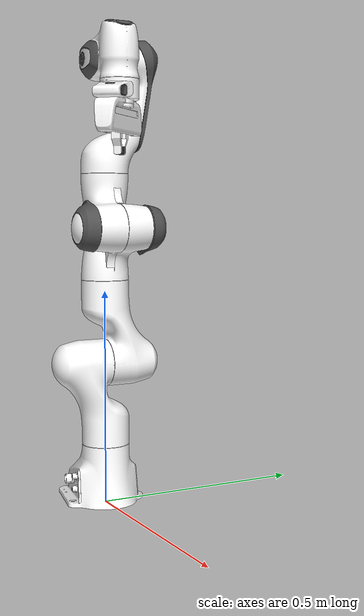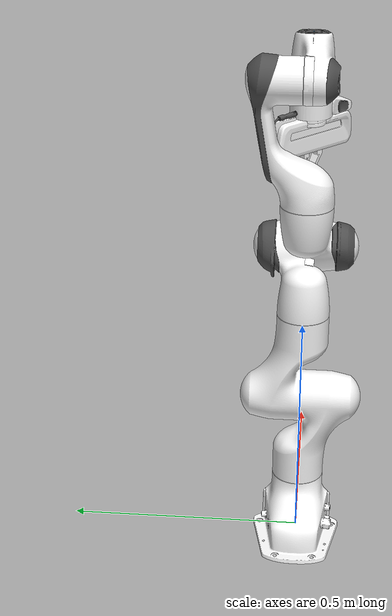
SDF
<sdf version='1.12'>
  <model name='panda'>
    <joint name="fix_to_world" type="fixed">
      <parent>world</parent>
      <child>panda</child>
    </joint>
    <link name='panda'>
      <inertial>
        <pose>-0.041018001735210419 -0.00014000000373926011 0.049973998218774802 0 0 0</pose>
        <mass>0.62976902723312378</mass>
        <inertia>
          <ixx>0.0031499998923813278</ixx>
          <ixy>8.2897145737138682e-07</ixy>
          <ixz>0.00014999999438674289</ixz>
          <iyy>0.0038799999968735272</iyy>
          <iyz>8.2299114240520787e-06</iyz>
          <izz>0.0042850001213994744</izz>
        </inertia>
      </inertial>
      <collision name='panda_fixed_joint_lump__Geom_11_collision'>
        <pose>-0.02918976545333862 -0.00087946496205404401 0.056603193283081048 0.073410503566265134 -1.1999953985214227 3.0813767910003662</pose>
        <geometry>
          <mesh>
            <scale>1 1 1</scale>
            <uri>./panda/meshes/stl/link0_c.stl</uri>
          </mesh>
        </geometry>
      </collision>
      <visual name='panda_fixed_joint_lump__Geom_0_visual'>
        <pose>-0.02434170804917812 0.068985842168331146 0.037001296877861023 0.88097333908081055 -0.00090121978428207774 1.731059789657593</pose>
        <geometry>
          <mesh>
            <scale>1 1 1</scale>
            <uri>./panda/meshes/stl/link0_0.stl</uri>
          </mesh>
        </geometry>
        <material>
          <diffuse>1 1 1 1</diffuse>
          <ambient>1 1 1 1</ambient>
        </material>
      </visual>
      <visual name='panda_fixed_joint_lump__Geom_1_visual_1'>
        <pose>-0.025005137547850609 0.072889678180217743 0.036978751420974731 2.3542244434356689 -0.066276095807552476 1.6549332141876218</pose>
        <geometry>
          <mesh>
            <scale>1 1 1</scale>
            <uri>./panda/meshes/stl/link0_1.stl</uri>
          </mesh>
        </geometry>
        <material>
          <diffuse>0.3125 0.3125 0.3125 1</diffuse>
          <ambient>0.3125 0.3125 0.3125 1</ambient>
        </material>
      </visual>
      <visual name='panda_fixed_joint_lump__Geom_2_visual_2'>
        <pose>-0.02374683320522308 -0.065352961421012878 0.062999323010444641 1.5704005956649782 -0.0057430132292210822 -0.16589890420436862</pose>
        <geometry>
          <mesh>
            <scale>1 1 1</scale>
            <uri>./panda/meshes/stl/link0_2.stl</uri>
          </mesh>
        </geometry>
        <material>
          <diffuse>1 1 1 1</diffuse>
          <ambient>1 1 1 1</ambient>
        </material>
      </visual>
      <visual name='panda_fixed_joint_lump__Geom_3_visual_3'>
        <pose>-0.024884207174181942 -0.072681337594985962 0.062931284308433533 0.86253124475479115 0.085192404687404716 1.286632180213928</pose>
        <geometry>
          <mesh>
            <scale>1 1 1</scale>
            <uri>./panda/meshes/stl/link0_3.stl</uri>
          </mesh>
        </geometry>
        <material>
          <diffuse>0.3125 0.3125 0.3125 1</diffuse>
          <ambient>0.3125 0.3125 0.3125 1</ambient>
        </material>
      </visual>
      <visual name='panda_fixed_joint_lump__Geom_4_visual_4'>
        <pose>-0.06482117623090744 -0.065604247152805328 0.048001378774642937 0.030375862494111058 0.012032273225486277 1.4114311933517463</pose>
        <geometry>
          <mesh>
            <scale>1 1 1</scale>
            <uri>./panda/meshes/stl/link0_4.stl</uri>
          </mesh>
        </geometry>
        <material>
          <diffuse>1 1 1 1</diffuse>
          <ambient>1 1 1 1</ambient>
        </material>
      </visual>
      <visual name='panda_fixed_joint_lump__Geom_5_visual_5'>
        <pose>-0.059638854116201401 0.057885069400072098 0.036908484995365143 1.7514346837997441 -1.1657341758564144e-15 1.731783270835876</pose>
        <geometry>
          <mesh>
            <scale>1 1 1</scale>
            <uri>./panda/meshes/stl/link0_5.stl</uri>
          </mesh>
        </geometry>
        <material>
          <diffuse>0.3125 0.3125 0.3125 1</diffuse>
          <ambient>0.3125 0.3125 0.3125 1</ambient>
        </material>
      </visual>
      <visual name='panda_fixed_joint_lump__Geom_6_visual_6'>
        <pose>0.0110528040677309 -0.072000034153461456 0.04606270045042038 -0.12475356459617619 0.002619338454678613 1.41191554069519</pose>
        <geometry>
          <mesh>
            <scale>1 1 1</scale>
            <uri>./panda/meshes/stl/link0_7.stl</uri>
          </mesh>
        </geometry>
        <material>
          <diffuse>1 1 1 1</diffuse>
          <ambient>1 1 1 1</ambient>
        </material>
      </visual>
      <visual name='panda_fixed_joint_lump__Geom_7_visual_7'>
        <pose>-0.029952924698591229 -3.4480170143069699e-05 0.053494546562433243 -0.0013455851003527633 -1.135651707649231 -3.1380126476287842</pose>
        <geometry>
          <mesh>
            <scale>1 1 1</scale>
            <uri>./panda/meshes/stl/link0_8.stl</uri>
          </mesh>
        </geometry>
        <material>
          <diffuse>1 1 1 1</diffuse>
          <ambient>1 1 1 1</ambient>
        </material>
      </visual>
      <visual name='panda_fixed_joint_lump__Geom_8_visual_8'>
        <pose>-0.02499927394092083 -0.073032073676586151 0.0328950434923172 1.8630088567733756 -1.5551604032516493 -0.43340367078781517</pose>
        <geometry>
          <mesh>
            <scale>1 1 1</scale>
            <uri>./panda/meshes/stl/link0_9.stl</uri>
          </mesh>
        </geometry>
        <material>
          <diffuse>0.3125 0.3125 0.3125 1</diffuse>
          <ambient>0.3125 0.3125 0.3125 1</ambient>
        </material>
      </visual>
      <visual name='panda_fixed_joint_lump__Geom_9_visual_9'>
        <pose>-0.02378720045089722 -0.065486304461956024 0.032974105328321457 1.5455597639083858 -0.011791349388659007 -0.15464279055595401</pose>
        <geometry>
          <mesh>
            <scale>1 1 1</scale>
            <uri>./panda/meshes/stl/link0_10.stl</uri>
          </mesh>
        </geometry>
        <material>
          <diffuse>1 1 1 1</diffuse>
          <ambient>1 1 1 1</ambient>
        </material>
      </visual>
      <visual name='panda_fixed_joint_lump__Geom_10_visual_10'>
        <pose>0.01104283332824707 0.071996957063674927 0.046087440103292472 -0.12477058172225948 -0.0025225700810551726 1.7314902544021611</pose>
        <geometry>
          <mesh>
            <scale>1 1 1</scale>
            <uri>./panda/meshes/stl/link0_11.stl</uri>
          </mesh>
        </geometry>
        <material>
          <diffuse>1 1 1 1</diffuse>
          <ambient>1 1 1 1</ambient>
        </material>
      </visual>
    </link>
    <joint name='joint1' type='revolute'>
      <pose relative_to='panda'>0 0 0.33300000429153442 0 0 0</pose>
      <parent>panda</parent>
      <child>link1</child>
      <axis>
        <xyz>0 0 1</xyz>
        <limit>
          <lower>-2.897300004959106</lower>
          <upper>2.897300004959106</upper>
          <effort>1000</effort>
          <velocity>1000</velocity>
        </limit>
        <dynamics>
          <spring_reference>0</spring_reference>
          <spring_stiffness>0</spring_stiffness>
        </dynamics>
      </axis>
    </joint>
    <link name='link1'>
      <pose relative_to='joint1'>0 0 0 0 0 0</pose>
      <inertial>
        <pose>0.0038749999366700649 0.0020810000132769351 -0.047619998455047607 -0.009398424997925767 -0.027576528489589695 1.5581063032150273</pose>
        <mass>4.9706840515136719</mass>
        <inertia>
          <ixx>0.70713698863983154</ixx>
          <ixy>0</ixy>
          <ixz>0</ixz>
          <iyy>0.70343542098999023</iyy>
          <iyz>0</iyz>
          <izz>0.0085245566442608833</izz>
        </inertia>
      </inertial>
      <collision name='link1_fixed_joint_lump__Geom_13_collision'>
        <pose>1.1398981769161759e-05 -0.031265527009963989 -0.06937330961227417 0.35075756907463085 -0.0003218273341190071 0.0006491282838396727</pose>
        <geometry>
          <mesh>
            <scale>1 1 1</scale>
            <uri>./panda/meshes/stl/link1_c.stl</uri>
          </mesh>
        </geometry>
      </collision>
      <visual name='link1_fixed_joint_lump__Geom_12_visual'>
        <pose>2.2415551939047869e-06 -0.032479386776685708 -0.067575864493846893 0.38337042927741999 0.00014062898117117595 -0.00037883082404732704</pose>
        <geometry>
          <mesh>
            <scale>1 1 1</scale>
            <uri>./panda/meshes/stl/link1.stl</uri>
          </mesh>
        </geometry>
        <material>
          <diffuse>1 1 1 1</diffuse>
          <ambient>1 1 1 1</ambient>
        </material>
      </visual>
    </link>
    <joint name='joint2' type='revolute'>
      <pose relative_to='link1'>0 0 0 -1.5707963705062871 0 0</pose>
      <parent>link1</parent>
      <child>link2</child>
      <axis>
        <xyz>0 0 1</xyz>
        <limit>
          <lower>-1.762799978256226</lower>
          <upper>1.762799978256226</upper>
          <effort>1000</effort>
          <velocity>1000</velocity>
        </limit>
        <dynamics>
          <spring_reference>0</spring_reference>
          <spring_stiffness>0</spring_stiffness>
        </dynamics>
      </axis>
    </joint>
    <link name='link2'>
      <pose relative_to='joint2'>0 0 0 0 0 0</pose>
      <inertial>
        <pose>-0.003140999935567379 -0.028720000758767131 0.0034950000699609518 -2.3514454364776611 -0.96178817749023482 -0.72298550605773948</pose>
        <mass>0.64692598581314087</mass>
        <inertia>
          <ixx>0.031032642349600788</ixx>
          <ixy>0</ixy>
          <ixz>0</ixz>
          <iyy>0.028300106525421139</iyy>
          <iyz>0</iyz>
          <izz>0.002734250389039516</izz>
        </inertia>
      </inertial>
      <collision name='link2_fixed_joint_lump__Geom_15_collision'>
        <pose>-1.317655369348358e-05 -0.070321552455425262 0.031178239732980732 1.916776657104492 3.8633865187875893e-05 -0.0001752009702613577</pose>
        <geometry>
          <mesh>
            <scale>1 1 1</scale>
            <uri>./panda/meshes/stl/link2_c.stl</uri>
          </mesh>
        </geometry>
      </collision>
      <visual name='link2_fixed_joint_lump__Geom_14_visual'>
        <pose>3.082552893829416e-06 -0.068602755665779114 0.032209731638431549 1.9510754346847528 -0.00039106394979171487 -0.00013279869745019815</pose>
        <geometry>
          <mesh>
            <scale>1 1 1</scale>
            <uri>./panda/meshes/stl/link2.stl</uri>
          </mesh>
        </geometry>
        <material>
          <diffuse>1 1 1 1</diffuse>
          <ambient>1 1 1 1</ambient>
        </material>
      </visual>
    </link>
    <joint name='joint3' type='revolute'>
      <pose relative_to='link2'>0 -0.31600001454353333 2.4651903288156619e-32 1.5707963705062871 0 0</pose>
      <parent>link2</parent>
      <child>link3</child>
      <axis>
        <xyz>0 0 1</xyz>
        <limit>
          <lower>-2.897300004959106</lower>
          <upper>2.897300004959106</upper>
          <effort>1000</effort>
          <velocity>1000</velocity>
        </limit>
        <dynamics>
          <spring_reference>0</spring_reference>
          <spring_stiffness>0</spring_stiffness>
        </dynamics>
      </axis>
    </joint>
    <link name='link3'>
      <pose relative_to='joint3'>0 0 0 0 0 0</pose>
      <inertial>
        <pose>0.027518000453710559 0.039252001792192459 -0.066501997411251068 0.37785014510154724 0.35082399845123308 1.7004150152206423</pose>
        <mass>3.2286040782928471</mass>
        <inertia>
          <ixx>0.04150138795375824</ixx>
          <ixy>0</ixy>
          <ixz>0</ixz>
          <iyy>0.041479256004095078</iyy>
          <iyz>0</iyz>
          <izz>0.0012463544262573121</izz>
        </inertia>
      </inertial>
      <collision name='link3_fixed_joint_lump__Geom_20_collision'>
        <pose>0.044348306953907013 0.024928325787186619 -0.038129985332489007 0.62642812728881847 -0.64891242980957053 2.788815021514893</pose>
        <geometry>
          <mesh>
            <scale>1 1 1</scale>
            <uri>./panda/meshes/stl/link3_c.stl</uri>
          </mesh>
        </geometry>
      </collision>
      <visual name='link3_fixed_joint_lump__Geom_16_visual'>
        <pose>0.041640069335699081 0.024441450834274289 -0.037274930626153953 0.57065826654434204 -0.72423368692398138 2.9041154384613042</pose>
        <geometry>
          <mesh>
            <scale>1 1 1</scale>
            <uri>./panda/meshes/stl/link3_0.stl</uri>
          </mesh>
        </geometry>
        <material>
          <diffuse>1 1 1 1</diffuse>
          <ambient>1 1 1 1</ambient>
        </material>
      </visual>
      <visual name='link3_fixed_joint_lump__Geom_17_visual_1'>
        <pose>0.021553479135036469 -0.01122317090630531 -0.01154831890016794 -3.1202132701873779 -1.0597566366195679 -1.4907529354095459</pose>
        <geometry>
          <mesh>
            <scale>1 1 1</scale>
            <uri>./panda/meshes/stl/link3_1.stl</uri>
          </mesh>
        </geometry>
        <material>
          <diffuse>1 1 1 1</diffuse>
          <ambient>1 1 1 1</ambient>
        </material>
      </visual>
      <visual name='link3_fixed_joint_lump__Geom_18_visual_2'>
        <pose>0.056876711547374732 -0.01139492075890303 -0.061174463480710983 0.0014353713486343616 -0.0078644454479217495 2.3501865863800049</pose>
        <geometry>
          <mesh>
            <scale>1 1 1</scale>
            <uri>./panda/meshes/stl/link3_2.stl</uri>
          </mesh>
        </geometry>
        <material>
          <diffuse>1 1 1 1</diffuse>
          <ambient>1 1 1 1</ambient>
        </material>
      </visual>
      <visual name='link3_fixed_joint_lump__Geom_19_visual_3'>
        <pose>0.077491171658039093 0.079633466899394989 -0.0040228888392448434 0.91038072109222423 0.053157500922679714 1.636165976524353</pose>
        <geometry>
          <mesh>
            <scale>1 1 1</scale>
            <uri>./panda/meshes/stl/link3_3.stl</uri>
          </mesh>
        </geometry>
        <material>
          <diffuse>0.3125 0.3125 0.3125 1</diffuse>
          <ambient>0.3125 0.3125 0.3125 1</ambient>
        </material>
      </visual>
    </link>
    <joint name='joint4' type='revolute'>
      <pose relative_to='link3'>0.082500003278255463 -1.2325951644078309e-32 1.110223024625157e-16 1.5707963705062871 0 0</pose>
      <parent>link3</parent>
      <child>link4</child>
      <axis>
        <xyz>0 0 1</xyz>
        <limit>
          <lower>-3.0717999935150151</lower>
          <upper>-0.069799996912479401</upper>
          <effort>1000</effort>
          <velocity>1000</velocity>
        </limit>
        <dynamics>
          <spring_reference>0</spring_reference>
          <spring_stiffness>0</spring_stiffness>
        </dynamics>
      </axis>
    </joint>
    <link name='link4'>
      <pose relative_to='joint4'>0 0 0 0 0 0</pose>
      <inertial>
        <pose>-0.053169999271631241 0.1044190004467964 0.02745399996638298 0.94913733005523671 -0.76513409614562977 0.96968561410903942</pose>
        <mass>3.5878949165344238</mass>
        <inertia>
          <ixx>0.034959640353918083</ixx>
          <ixy>0</ixy>
          <ixz>0</ixz>
          <iyy>0.02814827673137188</iyy>
          <iyz>0</iyz>
          <izz>0.01062008365988731</izz>
        </inertia>
      </inertial>
      <collision name='link4_fixed_joint_lump__Geom_25_collision'>
        <pose>-0.038550294935703278 0.039525609463453293 0.024716241285204891 1.157525300979614 0.36233735084533691 0.6286469101905825</pose>
        <geometry>
          <mesh>
            <scale>1 1 1</scale>
            <uri>./panda/meshes/stl/link4_c.stl</uri>
          </mesh>
        </geometry>
      </collision>
      <visual name='link4_fixed_joint_lump__Geom_21_visual'>
        <pose>-0.025622488930821419 0.061185218393802643 -0.01139383111149073 -1.5781503915786741 -0.79126405715942449 -3.1295969486236568</pose>
        <geometry>
          <mesh>
            <scale>1 1 1</scale>
            <uri>./panda/meshes/stl/link4_0.stl</uri>
          </mesh>
        </geometry>
        <material>
          <diffuse>1 1 1 1</diffuse>
          <ambient>1 1 1 1</ambient>
        </material>
      </visual>
      <visual name='link4_fixed_joint_lump__Geom_22_visual_1'>
        <pose>-0.041551943868398673 0.038693804293870933 0.024040184915065769 1.1469171047210689 0.32720360159873962 0.65765702724456787</pose>
        <geometry>
          <mesh>
            <scale>1 1 1</scale>
            <uri>./panda/meshes/stl/link4_1.stl</uri>
          </mesh>
        </geometry>
        <material>
          <diffuse>1 1 1 1</diffuse>
          <ambient>1 1 1 1</ambient>
        </material>
      </visual>
      <visual name='link4_fixed_joint_lump__Geom_23_visual_2'>
        <pose>-0.0050090090371668339 0.004010283388197422 0.079634472727775574 0.017287049442529945 -1.4866933822631876 2.4623763561248775</pose>
        <geometry>
          <mesh>
            <scale>1 1 1</scale>
            <uri>./panda/meshes/stl/link4_2.stl</uri>
          </mesh>
        </geometry>
        <material>
          <diffuse>0.3125 0.3125 0.3125 1</diffuse>
          <ambient>0.3125 0.3125 0.3125 1</ambient>
        </material>
      </visual>
      <visual name='link4_fixed_joint_lump__Geom_24_visual_3'>
        <pose>-0.060935694724321372 0.01154452096670866 -0.011228485032916071 -0.11249836534261695 -0.50914639234542847 1.6149866580963128</pose>
        <geometry>
          <mesh>
            <scale>1 1 1</scale>
            <uri>./panda/meshes/stl/link4_3.stl</uri>
          </mesh>
        </geometry>
        <material>
          <diffuse>1 1 1 1</diffuse>
          <ambient>1 1 1 1</ambient>
        </material>
      </visual>
    </link>
    <joint name='joint5' type='revolute'>
      <pose relative_to='link4'>-0.082500003278255463 0.38400000333786011 0 -1.5707963705062871 0 0</pose>
      <parent>link4</parent>
      <child>link5</child>
      <axis>
        <xyz>0 0 1</xyz>
        <limit>
          <lower>-2.897300004959106</lower>
          <upper>2.897300004959106</upper>
          <effort>1000</effort>
          <velocity>1000</velocity>
        </limit>
        <dynamics>
          <spring_reference>0</spring_reference>
          <spring_stiffness>0</spring_stiffness>
        </dynamics>
      </axis>
    </joint>
    <link name='link5'>
      <pose relative_to='joint5'>0 0 0 0 0 0</pose>
      <inertial>
        <pose>-0.01195299997925758 0.041064999997615807 -0.038437001407146447 -0.044814899563789395 0.13901987671852112 -0.28689983487129206</pose>
        <mass>1.2259459495544429</mass>
        <inertia>
          <ixx>0.0367625392973423</ixx>
          <ixy>0</ixy>
          <ixz>0</ixz>
          <iyy>0.028853090479969978</iyy>
          <iyz>0</iyz>
          <izz>0.0080343708395957947</izz>
        </inertia>
      </inertial>
      <collision name='link5_fixed_joint_lump__Geom_29_collision'>
        <pose>0.00097325880778953433 0.019922221079468731 -0.20910695195198059 -2.9667460918426509 -0.90616524219512962 -1.8724935054779053</pose>
        <geometry>
          <mesh>
            <scale>1 1 1</scale>
            <uri>./panda/meshes/stl/link5_c0.stl</uri>
          </mesh>
        </geometry>
      </collision>
      <collision name='link5_fixed_joint_lump__Geom_30_collision_1'>
        <pose>-0.00023507016885560011 0.080059252679347992 -0.12115345150232321 0.0037856136914342637 0.24683557450771332 1.5664136409759519</pose>
        <geometry>
          <mesh>
            <scale>1 1 1</scale>
            <uri>./panda/meshes/stl/link5_c1.stl</uri>
          </mesh>
        </geometry>
      </collision>
      <collision name='link5_fixed_joint_lump__Geom_31_collision_2'>
        <pose>0.0001502534287283197 0.069182969629764557 -0.0045388308353722104 1.1780917644500728 -0.0051827174611389637 0.0052076573483645925</pose>
        <geometry>
          <mesh>
            <scale>1 1 1</scale>
            <uri>./panda/meshes/stl/link5_c2.stl</uri>
          </mesh>
        </geometry>
      </collision>
      <visual name='link5_fixed_joint_lump__Geom_26_visual'>
        <pose>-0.0001290949294343591 0.095753885805606842 -0.032729625701904297 0.0021646835375577159 0.04994665086269378 1.5671027898788448</pose>
        <geometry>
          <mesh>
            <scale>1 1 1</scale>
            <uri>./panda/meshes/stl/link5_0.stl</uri>
          </mesh>
        </geometry>
        <material>
          <diffuse>0.3125 0.3125 0.3125 1</diffuse>
          <ambient>0.3125 0.3125 0.3125 1</ambient>
        </material>
      </visual>
      <visual name='link5_fixed_joint_lump__Geom_27_visual_1'>
        <pose>-0.010146972723305231 0.10322721302509311 -0.11142128705978389 0.12574712932109833 0.17403830587863933 1.692032933235168</pose>
        <geometry>
          <mesh>
            <scale>1 1 1</scale>
            <uri>./panda/meshes/stl/link5_1.stl</uri>
          </mesh>
        </geometry>
        <material>
          <diffuse>1 1 1 1</diffuse>
          <ambient>1 1 1 1</ambient>
        </material>
      </visual>
      <visual name='link5_fixed_joint_lump__Geom_28_visual_2'>
        <pose>-1.4686699500998659e-07 0.044252697378396988 -0.1112985387444496 -0.27700033783912659 2.4900251446524642e-05 6.5546038968022886e-05</pose>
        <geometry>
          <mesh>
            <scale>1 1 1</scale>
            <uri>./panda/meshes/stl/link5_2.stl</uri>
          </mesh>
        </geometry>
        <material>
          <diffuse>1 1 1 1</diffuse>
          <ambient>1 1 1 1</ambient>
        </material>
      </visual>
    </link>
    <joint name='joint6' type='revolute'>
      <pose relative_to='link5'>0 -3.081487911019577e-33 0 1.5707963705062871 0 0</pose>
      <parent>link5</parent>
      <child>link6</child>
      <axis>
        <xyz>0 0 1</xyz>
        <limit>
          <lower>-0.017500000074505809</lower>
          <upper>3.752500057220459</upper>
          <effort>1000</effort>
          <velocity>1000</velocity>
        </limit>
        <dynamics>
          <spring_reference>0</spring_reference>
          <spring_stiffness>0</spring_stiffness>
        </dynamics>
      </axis>
    </joint>
    <link name='link6'>
      <pose relative_to='joint6'>0 0 0 0 0 0</pose>
      <inertial>
        <pose>0.060148999094963067 -0.01411699969321489 -0.010517000220716 0.51302474737167314 -1.2262420654296884 2.524661540985107</pose>
        <mass>1.6665550470352171</mass>
        <inertia>
          <ixx>0.0058427611365914336</ixx>
          <ixy>0</ixy>
          <ixz>0</ixz>
          <iyy>0.0043103736825287342</iyy>
          <iyz>0</iyz>
          <izz>0.0015978650189936161</izz>
        </inertia>
      </inertial>
      <collision name='link6_fixed_joint_lump__Geom_49_collision'>
        <pose>0.051002293825149543 0.0069326730445027351 0.0061689931899309158 -3.061599969863892 -1.4277689456939708 0.048520706593990284</pose>
        <geometry>
          <mesh>
            <scale>1 1 1</scale>
            <uri>./panda/meshes/stl/link6_c.stl</uri>
          </mesh>
        </geometry>
      </collision>
      <visual name='link6_fixed_joint_lump__Geom_32_visual'>
        <pose>0.025386864319443699 -0.01551799941807985 -0.0051399674266576767 0.16938182711601221 -1.5174187421798704 2.4590718746185307</pose>
        <geometry>
          <mesh>
            <scale>1 1 1</scale>
            <uri>./panda/meshes/stl/link6_0.stl</uri>
          </mesh>
        </geometry>
        <material>
          <diffuse>1 1 1 1</diffuse>
          <ambient>1 1 1 1</ambient>
        </material>
      </visual>
      <visual name='link6_fixed_joint_lump__Geom_33_visual_1'>
        <pose>9.6891286375466734e-05 0.001489222166128457 0.052967306226491928 -1.7817827463150022 -1.4691929817199723 -3.1375558376312274</pose>
        <geometry>
          <mesh>
            <scale>1 1 1</scale>
            <uri>./panda/meshes/stl/link6_1.stl</uri>
          </mesh>
        </geometry>
        <material>
          <diffuse>1 1 1 1</diffuse>
          <ambient>1 1 1 1</ambient>
        </material>
      </visual>
      <visual name='link6_fixed_joint_lump__Geom_34_visual_2'>
        <pose>0.1033527925610542 0.068194136023521423 -0.00058207398978993297 1.4199872016906741 -0.0099118994548915811 1.3432543277740481</pose>
        <geometry>
          <mesh>
            <scale>1 1 1</scale>
            <uri>./panda/meshes/stl/link6_2.stl</uri>
          </mesh>
        </geometry>
        <material>
          <diffuse>0.3125 0.3125 0.3125 1</diffuse>
          <ambient>0.3125 0.3125 0.3125 1</ambient>
        </material>
      </visual>
      <visual name='link6_fixed_joint_lump__Geom_35_visual_3'>
        <pose>0.088205479085445404 0.077725529670715332 -0.010604832321405411 0 0 0</pose>
        <geometry>
          <mesh>
            <scale>1 1 1</scale>
            <uri>./panda/meshes/stl/link6_3.stl</uri>
          </mesh>
        </geometry>
        <material>
          <diffuse>1 1 1 1</diffuse>
          <ambient>1 1 1 1</ambient>
        </material>
      </visual>
      <visual name='link6_fixed_joint_lump__Geom_36_visual_4'>
        <pose>0.098668210208415985 0.075884878635406494 -3.8183816286618821e-06 1.5707963705062871 -1.1657341758564144e-15 1.5707963705062871</pose>
        <geometry>
          <mesh>
            <scale>1 1 1</scale>
            <uri>./panda/meshes/stl/link6_4.stl</uri>
          </mesh>
        </geometry>
        <material>
          <diffuse>1 1 1 1</diffuse>
          <ambient>1 1 1 1</ambient>
        </material>
      </visual>
      <visual name='link6_fixed_joint_lump__Geom_37_visual_5'>
        <pose>0.088203072547912598 0.077727921307086945 0.01061945594847202 0 0 0</pose>
        <geometry>
          <mesh>
            <scale>1 1 1</scale>
            <uri>./panda/meshes/stl/link6_5.stl</uri>
          </mesh>
        </geometry>
        <material>
          <diffuse>1 1 1 1</diffuse>
          <ambient>1 1 1 1</ambient>
        </material>
      </visual>
      <visual name='link6_fixed_joint_lump__Geom_38_visual_6'>
        <pose>0.077755987644195557 0.079569511115550995 -2.4452554043818959e-06 1.5707963705062871 -1.1657341758564144e-15 1.5707963705062871</pose>
        <geometry>
          <mesh>
            <scale>1 1 1</scale>
            <uri>./panda/meshes/stl/link6_6.stl</uri>
          </mesh>
        </geometry>
        <material>
          <diffuse>1 1 1 1</diffuse>
          <ambient>1 1 1 1</ambient>
        </material>
      </visual>
      <visual name='link6_fixed_joint_lump__Geom_39_visual_7'>
        <pose>0.063389331102371216 0.08160700649023056 -1.3937560083832071e-07 0 0 0</pose>
        <geometry>
          <mesh>
            <scale>1 1 1</scale>
            <uri>./panda/meshes/stl/link6_7.stl</uri>
          </mesh>
        </geometry>
        <material>
          <diffuse>0.0490199998 0.676470041 0.975489974 1</diffuse>
          <ambient>0.0490199998 0.676470041 0.975489974 1</ambient>
        </material>
      </visual>
      <visual name='link6_fixed_joint_lump__Geom_40_visual_8'>
        <pose>0.1144352480769157 0.070936717092990875 -1.2390758001856741e-06 0 0 0</pose>
        <geometry>
          <mesh>
            <scale>1 1 1</scale>
            <uri>./panda/meshes/stl/link6_8.stl</uri>
          </mesh>
        </geometry>
        <material>
          <diffuse>0.0490199998 0.676470041 0.975489974 1</diffuse>
          <ambient>0.0490199998 0.676470041 0.975489974 1</ambient>
        </material>
      </visual>
      <visual name='link6_fixed_joint_lump__Geom_41_visual_9'>
        <pose>-0.00072939199162647128 -0.0001012687789625488 0.052537377923727042 -0.012449674308300024 -1.468942165374759 -3.141592566167013</pose>
        <geometry>
          <mesh>
            <scale>1 1 1</scale>
            <uri>./panda/meshes/stl/link6_9.stl</uri>
          </mesh>
        </geometry>
        <material>
          <diffuse>0.3125 0.3125 0.3125 1</diffuse>
          <ambient>0.3125 0.3125 0.3125 1</ambient>
        </material>
      </visual>
      <visual name='link6_fixed_joint_lump__Geom_42_visual_10'>
        <pose>0.091525919735431671 0.075753055512905121 -6.295970524661243e-05 1.6008551120758059 -0.00059030129341403103 1.351572632789612</pose>
        <geometry>
          <mesh>
            <scale>1 1 1</scale>
            <uri>./panda/meshes/stl/link6_10.stl</uri>
          </mesh>
        </geometry>
        <material>
          <diffuse>0.3125 0.3125 0.3125 1</diffuse>
          <ambient>0.3125 0.3125 0.3125 1</ambient>
        </material>
      </visual>
      <visual name='link6_fixed_joint_lump__Geom_43_visual_11'>
        <pose>0.088052384555339813 0.076807066798210144 -1.222126047650818e-05 0 0 1.3960084915161131</pose>
        <geometry>
          <mesh>
            <scale>1 1 1</scale>
            <uri>./panda/meshes/stl/link6_11.stl</uri>
          </mesh>
        </geometry>
        <material>
          <diffuse>1 1 1 1</diffuse>
          <ambient>1 1 1 1</ambient>
        </material>
      </visual>
      <visual name='link6_fixed_joint_lump__Geom_44_visual_12'>
        <pose>0.088302627205848694 0.077489271759986877 -0.024865582585334781 0 0 0</pose>
        <geometry>
          <mesh>
            <scale>1 1 1</scale>
            <uri>./panda/meshes/stl/link6_12.stl</uri>
          </mesh>
        </geometry>
        <material>
          <diffuse>0 1 0 1</diffuse>
          <ambient>0 1 0 1</ambient>
        </material>
      </visual>
      <visual name='link6_fixed_joint_lump__Geom_45_visual_13'>
        <pose>0.088170304894447327 0.077455528080463409 0.025032425299286839 0 0 0</pose>
        <geometry>
          <mesh>
            <scale>1 1 1</scale>
            <uri>./panda/meshes/stl/link6_13.stl</uri>
          </mesh>
        </geometry>
        <material>
          <diffuse>1 1 1 1</diffuse>
          <ambient>1 1 1 1</ambient>
        </material>
      </visual>
      <visual name='link6_fixed_joint_lump__Geom_46_visual_14'>
        <pose>0.0074149947613477707 0.00012494443217292431 0.043721359223127372 0.02864136174321167 -1.4710581302642891 3.1242022514343262</pose>
        <geometry>
          <mesh>
            <scale>1 1 1</scale>
            <uri>./panda/meshes/stl/link6_14.stl</uri>
          </mesh>
        </geometry>
        <material>
          <diffuse>0.3125 0.3125 0.3125 1</diffuse>
          <ambient>0.3125 0.3125 0.3125 1</ambient>
        </material>
      </visual>
      <visual name='link6_fixed_joint_lump__Geom_47_visual_15'>
        <pose>0.089545324444770813 0.074201710522174835 -2.5736657335073691e-05 1.5450208187103267 5.6026026868550017e-05 1.350536465644836</pose>
        <geometry>
          <mesh>
            <scale>1 1 1</scale>
            <uri>./panda/meshes/stl/link6_15.stl</uri>
          </mesh>
        </geometry>
        <material>
          <diffuse>0.3125 0.3125 0.3125 1</diffuse>
          <ambient>0.3125 0.3125 0.3125 1</ambient>
        </material>
      </visual>
      <visual name='link6_fixed_joint_lump__Geom_48_visual_16'>
        <pose>0.058400500565767288 0.003517891513183713 0.0083698667585849762 2.9469649791717529 -1.3099440336227433 0.18028473854064975</pose>
        <geometry>
          <mesh>
            <scale>1 1 1</scale>
            <uri>./panda/meshes/stl/link6_16.stl</uri>
          </mesh>
        </geometry>
        <material>
          <diffuse>1 1 1 1</diffuse>
          <ambient>1 1 1 1</ambient>
        </material>
      </visual>
    </link>
    <joint name='joint7' type='revolute'>
      <pose relative_to='link6'>0.087999999523162842 0 -2.4651903288156619e-32 1.5707963705062871 0 0</pose>
      <parent>link6</parent>
      <child>link7</child>
      <axis>
        <xyz>0 0 1</xyz>
        <limit>
          <lower>-2.897300004959106</lower>
          <upper>2.897300004959106</upper>
          <effort>1000</effort>
          <velocity>1000</velocity>
        </limit>
        <dynamics>
          <spring_reference>0</spring_reference>
          <spring_stiffness>0</spring_stiffness>
        </dynamics>
      </axis>
    </joint>
    <link name='link7'>
      <pose relative_to='joint7'>0 0 0 0 0 0</pose>
      <inertial>
        <pose>0.0017561012677413969 0.001388201661357434 0.099156444260258533 -0.16143882274627694 0.13793462514877325 -0.11924774199724202</pose>
        <mass>1.4655219912528989</mass>
        <inertia>
          <ixx>0.016244986351674481</ixx>
          <ixy>0.00068806902398565952</ixy>
          <ixz>0.00087063954314434058</ixz>
          <iyy>0.01423590995201165</iyy>
          <iyz>0.00019952156607243641</iyz>
          <izz>0.0065638560560614618</izz>
        </inertia>
      </inertial>
      <collision name='link7_fixed_joint_lump__Geom_58_collision'>
        <pose>0.010361372493207449 0.01035960391163826 0.079107776284217834 3.1380321979522723 -1.5171405076980675 -2.3520386219024663</pose>
        <geometry>
          <mesh>
            <scale>1 1 1</scale>
            <uri>./panda/meshes/stl/link7_c.stl</uri>
          </mesh>
        </geometry>
      </collision>
      <collision name='link7_fixed_joint_lump__Geom_64_collision_1'>
        <pose>-0.00043715864536744958 -0.00043324671033444321 0.13092952144145961 1.596544504165649 -0.00045987850171514267 -0.78562712656275824</pose>
        <geometry>
          <mesh>
            <scale>1 1 1</scale>
            <uri>./panda/meshes/stl/hand_c.stl</uri>
          </mesh>
        </geometry>
      </collision>
      <visual name='link7_fixed_joint_lump__Geom_50_visual'>
        <pose>0.041777942329645157 0.04183594137430191 0.082172580063343048 -1.5847380161285385 -1.3546061515808119 -2.3566710948944105</pose>
        <geometry>
          <mesh>
            <scale>1 1 1</scale>
            <uri>./panda/meshes/stl/link7_0.stl</uri>
          </mesh>
        </geometry>
        <material>
          <diffuse>1 1 1 1</diffuse>
          <ambient>1 1 1 1</ambient>
        </material>
      </visual>
      <visual name='link7_fixed_joint_lump__Geom_51_visual_1'>
        <pose>0.063813894987106323 0.017703890800476071 0.08298637717962265 1.8028622865676878 0.0020412425510584406 -0.70134317874908436</pose>
        <geometry>
          <mesh>
            <scale>1 1 1</scale>
            <uri>./panda/meshes/stl/link7_1.stl</uri>
          </mesh>
        </geometry>
        <material>
          <diffuse>0.3125 0.3125 0.3125 1</diffuse>
          <ambient>0.3125 0.3125 0.3125 1</ambient>
        </material>
      </visual>
      <visual name='link7_fixed_joint_lump__Geom_52_visual_2'>
        <pose>-0.031759034842252731 -0.031760748475790017 0.085781209170818329 -1.6960048675537112 -1.4537425041198759 2.4810845851898189</pose>
        <geometry>
          <mesh>
            <scale>1 1 1</scale>
            <uri>./panda/meshes/stl/link7_2.stl</uri>
          </mesh>
        </geometry>
        <material>
          <diffuse>0.3125 0.3125 0.3125 1</diffuse>
          <ambient>0.3125 0.3125 0.3125 1</ambient>
        </material>
      </visual>
      <visual name='link7_fixed_joint_lump__Geom_53_visual_3'>
        <pose>-0.036950308829545968 -0.036942269653081887 0.08580172061920166 0 0 0.78510922193527211</pose>
        <geometry>
          <mesh>
            <scale>1 1 1</scale>
            <uri>./panda/meshes/stl/link7_3.stl</uri>
          </mesh>
        </geometry>
        <material>
          <diffuse>0.3125 0.3125 0.3125 1</diffuse>
          <ambient>0.3125 0.3125 0.3125 1</ambient>
        </material>
      </visual>
      <visual name='link7_fixed_joint_lump__Geom_54_visual_4'>
        <pose>-0.037706732749938958 -0.037708986550569527 0.08578035980463028 0 0 0.78515225648880005</pose>
        <geometry>
          <mesh>
            <scale>1 1 1</scale>
            <uri>./panda/meshes/stl/link7_4.stl</uri>
          </mesh>
        </geometry>
        <material>
          <diffuse>0.3125 0.3125 0.3125 1</diffuse>
          <ambient>0.3125 0.3125 0.3125 1</ambient>
        </material>
      </visual>
      <visual name='link7_fixed_joint_lump__Geom_55_visual_5'>
        <pose>0.017698489129543301 0.063838496804237366 0.082955755293369293 1.337482094764709 0.0024362159892916545 2.2714965343475342</pose>
        <geometry>
          <mesh>
            <scale>1 1 1</scale>
            <uri>./panda/meshes/stl/link7_5.stl</uri>
          </mesh>
        </geometry>
        <material>
          <diffuse>0.3125 0.3125 0.3125 1</diffuse>
          <ambient>0.3125 0.3125 0.3125 1</ambient>
        </material>
      </visual>
      <visual name='link7_fixed_joint_lump__Geom_56_visual_6'>
        <pose>0.041159655898809433 0.041204128414392471 0.067758239805698395 -1.5750199556350708 -1.2906385660171509 -2.352616786956788</pose>
        <geometry>
          <mesh>
            <scale>1 1 1</scale>
            <uri>./panda/meshes/stl/link7_6.stl</uri>
          </mesh>
        </geometry>
        <material>
          <diffuse>0.3125 0.3125 0.3125 1</diffuse>
          <ambient>0.3125 0.3125 0.3125 1</ambient>
        </material>
      </visual>
      <visual name='link7_fixed_joint_lump__Geom_57_visual_7'>
        <pose>1.216750774801767e-06 4.2939758714055642e-05 0.077748022973537445 3.1360432749907656 -1.5707963267948966 0</pose>
        <geometry>
          <mesh>
            <scale>1 1 1</scale>
            <uri>./panda/meshes/stl/link7_7.stl</uri>
          </mesh>
        </geometry>
        <material>
          <diffuse>1 1 1 1</diffuse>
          <ambient>1 1 1 1</ambient>
        </material>
      </visual>
      <visual name='link7_fixed_joint_lump__Geom_59_visual_8'>
        <pose>7.4803646833465054e-06 7.4807285586752316e-06 0.12580798675119881 0.78539824474211373 -1.5707963267948966 0</pose>
        <geometry>
          <mesh>
            <scale>1 1 1</scale>
            <uri>./panda/meshes/stl/hand_0.stl</uri>
          </mesh>
        </geometry>
        <material>
          <diffuse>1 1 1 1</diffuse>
          <ambient>1 1 1 1</ambient>
        </material>
      </visual>
      <visual name='link7_fixed_joint_lump__Geom_60_visual_9'>
        <pose>-0.06753859832606908 -0.067548278347848462 0.1005250049456954 0.36175143718719477 0.00049613858573132111 -0.78781358967535164</pose>
        <geometry>
          <mesh>
            <scale>1 1 1</scale>
            <uri>./panda/meshes/stl/hand_1.stl</uri>
          </mesh>
        </geometry>
        <material>
          <diffuse>0.3125 0.3125 0.3125 1</diffuse>
          <ambient>0.3125 0.3125 0.3125 1</ambient>
        </material>
      </visual>
      <visual name='link7_fixed_joint_lump__Geom_61_visual_10'>
        <pose>-0.046734572117639997 -0.046735473739163598 0.08682022166252136 1.5699316263198853 0.31545385718345642 -0.7857571981730872</pose>
        <geometry>
          <mesh>
            <scale>1 1 1</scale>
            <uri>./panda/meshes/stl/hand_2.stl</uri>
          </mesh>
        </geometry>
        <material>
          <diffuse>0.3125 0.3125 0.3125 1</diffuse>
          <ambient>0.3125 0.3125 0.3125 1</ambient>
        </material>
      </visual>
      <visual name='link7_fixed_joint_lump__Geom_62_visual_11'>
        <pose>0.0022293265031529271 0.0022288189598343089 0.13672501143813129 1.559797525405884 -2.0673478502460277e-05 -0.78539952401604296</pose>
        <geometry>
          <mesh>
            <scale>1 1 1</scale>
            <uri>./panda/meshes/stl/hand_3.stl</uri>
          </mesh>
        </geometry>
        <material>
          <diffuse>1 1 1 1</diffuse>
          <ambient>1 1 1 1</ambient>
        </material>
      </visual>
      <visual name='link7_fixed_joint_lump__Geom_63_visual_12'>
        <pose>0.000518665619232419 4.4230626390329107e-05 0.11017979673855011 2.4241880764995236 -1.5707963267948966 0</pose>
        <geometry>
          <mesh>
            <scale>1 1 1</scale>
            <uri>./panda/meshes/stl/hand_4.stl</uri>
          </mesh>
        </geometry>
        <material>
          <diffuse>1 1 1 1</diffuse>
          <ambient>1 1 1 1</ambient>
        </material>
      </visual>
    </link>
    <joint name='finger_joint1' type='prismatic'>
      <pose relative_to='link7'>1.471961698537707e-17 -4.9065383777367183e-18 0.16540000137686731 0 0 -0.78539812564849854</pose>
      <parent>link7</parent>
      <child>left_finger</child>
      <axis>
        <xyz>0 1 0</xyz>
        <limit>
          <lower>0</lower>
          <upper>0.039999999105930328</upper>
          <effort>1000</effort>
          <velocity>1000</velocity>
        </limit>
        <dynamics>
          <spring_reference>0</spring_reference>
          <spring_stiffness>0</spring_stiffness>
        </dynamics>
      </axis>
    </joint>
    <link name='left_finger'>
      <pose relative_to='finger_joint1'>0 0 0 0 0 0</pose>
      <inertial>
        <pose>0 0 0 0 0 0</pose>
        <mass>0.01499999966472387</mass>
        <inertia>
          <ixx>2.374999894527718e-06</ixx>
          <ixy>0</ixy>
          <ixz>0</ixz>
          <iyy>2.374999894527718e-06</iyy>
          <iyz>0</iyz>
          <izz>7.5000002652814146e-07</izz>
        </inertia>
      </inertial>
      <collision name='left_finger_fixed_joint_lump__Geom_68_collision'>
        <pose>0 0.0054999999701976776 0.044500000774860382 0 0 0</pose>
        <geometry>
          <box>
            <size>0.017000000923871991 0.0080000003799796104 0.017000000923871991</size>
          </box>
        </geometry>
      </collision>
      <collision name='left_finger_fixed_joint_lump__Geom_69_collision_1'>
        <pose>0.0054999999701976776 0.002000000094994903 0.05000000074505806 0 0 0</pose>
        <geometry>
          <box>
            <size>0.0060000000521540642 0.0040000001899898052 0.0060000000521540642</size>
          </box>
        </geometry>
      </collision>
      <collision name='left_finger_fixed_joint_lump__Geom_70_collision_2'>
        <pose>-0.0054999999701976776 0.002000000094994903 0.05000000074505806 0 0 0</pose>
        <geometry>
          <box>
            <size>0.0060000000521540642 0.0040000001899898052 0.0060000000521540642</size>
          </box>
        </geometry>
      </collision>
      <collision name='left_finger_fixed_joint_lump__Geom_71_collision_3'>
        <pose>0.0054999999701976776 0.002000000094994903 0.039500001817941673 0 0 0</pose>
        <geometry>
          <box>
            <size>0.0060000000521540642 0.0040000001899898052 0.0070000002160668373</size>
          </box>
        </geometry>
      </collision>
      <collision name='left_finger_fixed_joint_lump__Geom_72_collision_4'>
        <pose>-0.0054999999701976776 0.002000000094994903 0.039500001817941673 0 0 0</pose>
        <geometry>
          <box>
            <size>0.0060000000521540642 0.0040000001899898052 0.0070000002160668373</size>
          </box>
        </geometry>
      </collision>
      <collision name='left_finger_fixed_joint_lump__Geom_67_collision_5'>
        <pose>4.8740554348114529e-07 0.015695411711931229 0.016874408349394798 0.00027537546702660398 -0.076631426811218289 1.5712788105010991</pose>
        <geometry>
          <mesh>
            <scale>1 1 1</scale>
            <uri>./panda/meshes/stl/finger_0.stl</uri>
          </mesh>
        </geometry>
      </collision>
      <visual name='left_finger_fixed_joint_lump__Geom_65_visual'>
        <pose>4.8740554348114529e-07 0.015695411711931229 0.016874408349394798 0.00027537546702660398 -0.076631426811218289 1.5712788105010991</pose>
        <geometry>
          <mesh>
            <scale>1 1 1</scale>
            <uri>./panda/meshes/stl/finger_0.stl</uri>
          </mesh>
        </geometry>
        <material>
          <diffuse>1 1 1 1</diffuse>
          <ambient>1 1 1 1</ambient>
        </material>
      </visual>
      <visual name='left_finger_fixed_joint_lump__Geom_66_visual_1'>
        <pose>-1.125447511185484e-06 0.0047386474907398224 0.044769961386919022 1.3088574409484861 0.0028917738236485671 1.5701396465301509</pose>
        <geometry>
          <mesh>
            <scale>1 1 1</scale>
            <uri>./panda/meshes/stl/finger_1.stl</uri>
          </mesh>
        </geometry>
        <material>
          <diffuse>0.3125 0.3125 0.3125 1</diffuse>
          <ambient>0.3125 0.3125 0.3125 1</ambient>
        </material>
      </visual>
    </link>
    <joint name='finger_joint2' type='prismatic'>
      <pose relative_to='link7'>1.471961698537707e-17 -4.9065383777367183e-18 0.16540000137686731 0 0 2.3561946153640752</pose>
      <parent>link7</parent>
      <child>right_finger</child>
      <axis>
        <xyz>0 1 0</xyz>
        <limit>
          <lower>0</lower>
          <upper>0.039999999105930328</upper>
          <effort>1000</effort>
          <velocity>1000</velocity>
        </limit>
        <dynamics>
          <spring_reference>0</spring_reference>
          <spring_stiffness>0</spring_stiffness>
        </dynamics>
      </axis>
    </joint>
    <link name='right_finger'>
      <pose relative_to='finger_joint2'>0 0 0 0 0 0</pose>
      <inertial>
        <pose>0 0 0 0 0 0</pose>
        <mass>0.01499999966472387</mass>
        <inertia>
          <ixx>2.374999894527718e-06</ixx>
          <ixy>0</ixy>
          <ixz>0</ixz>
          <iyy>2.374999894527718e-06</iyy>
          <iyz>0</iyz>
          <izz>7.5000002652814146e-07</izz>
        </inertia>
      </inertial>
      <collision name='right_finger_fixed_joint_lump__Geom_76_collision'>
        <pose>0 0.0054999999701976776 0.044500000774860382 0 0 0</pose>
        <geometry>
          <box>
            <size>0.017000000923871991 0.0080000003799796104 0.017000000923871991</size>
          </box>
        </geometry>
      </collision>
      <collision name='right_finger_fixed_joint_lump__Geom_77_collision_1'>
        <pose>0.0054999999701976776 0.002000000094994903 0.05000000074505806 0 0 0</pose>
        <geometry>
          <box>
            <size>0.0060000000521540642 0.0040000001899898052 0.0060000000521540642</size>
          </box>
        </geometry>
      </collision>
      <collision name='right_finger_fixed_joint_lump__Geom_78_collision_2'>
        <pose>-0.0054999999701976776 0.002000000094994903 0.05000000074505806 0 0 0</pose>
        <geometry>
          <box>
            <size>0.0060000000521540642 0.0040000001899898052 0.0060000000521540642</size>
          </box>
        </geometry>
      </collision>
      <collision name='right_finger_fixed_joint_lump__Geom_79_collision_3'>
        <pose>0.0054999999701976776 0.002000000094994903 0.039500001817941673 0 0 0</pose>
        <geometry>
          <box>
            <size>0.0060000000521540642 0.0040000001899898052 0.0070000002160668373</size>
          </box>
        </geometry>
      </collision>
      <collision name='right_finger_fixed_joint_lump__Geom_80_collision_4'>
        <pose>-0.0054999999701976776 0.002000000094994903 0.039500001817941673 0 0 0</pose>
        <geometry>
          <box>
            <size>0.0060000000521540642 0.0040000001899898052 0.0070000002160668373</size>
          </box>
        </geometry>
      </collision>
      <collision name='right_finger_fixed_joint_lump__Geom_75_collision_5'>
        <pose>4.8740554348114529e-07 0.015695411711931229 0.016874408349394798 0.00027537546702660398 -0.076631426811218289 1.5712788105010991</pose>
        <geometry>
          <mesh>
            <scale>1 1 1</scale>
            <uri>./panda/meshes/stl/finger_0.stl</uri>
          </mesh>
        </geometry>
      </collision>
      <visual name='right_finger_fixed_joint_lump__Geom_73_visual'>
        <pose>4.8740554348114529e-07 0.015695411711931229 0.016874408349394798 0.00027537546702660398 -0.076631426811218289 1.5712788105010991</pose>
        <geometry>
          <mesh>
            <scale>1 1 1</scale>
            <uri>./panda/meshes/stl/finger_0.stl</uri>
          </mesh>
        </geometry>
        <material>
          <diffuse>1 1 1 1</diffuse>
          <ambient>1 1 1 1</ambient>
        </material>
      </visual>
      <visual name='right_finger_fixed_joint_lump__Geom_74_visual_1'>
        <pose>-1.125447511185484e-06 0.0047386474907398224 0.044769961386919022 1.3088574409484861 0.0028917738236485671 1.5701396465301509</pose>
        <geometry>
          <mesh>
            <scale>1 1 1</scale>
            <uri>./panda/meshes/stl/finger_1.stl</uri>
          </mesh>
        </geometry>
        <material>
          <diffuse>0.3125 0.3125 0.3125 1</diffuse>
          <ambient>0.3125 0.3125 0.3125 1</ambient>
        </material>
      </visual>
    </link>
    <frame name='link0_joint' attached_to='panda'>
      <pose>0 0 0 0 0 0</pose>
    </frame>
    <frame name='link0' attached_to='link0_joint'>
      <pose>0 0 0 0 0 0</pose>
    </frame>
    <frame name='hand_joint' attached_to='link7'>
      <pose>0 0 0.107 0 0 -0.78539812564849854</pose>
    </frame>
    <frame name='hand' attached_to='hand_joint'>
      <pose>0 0 0 0 0 0</pose>
    </frame>
  </model>
</sdf>
